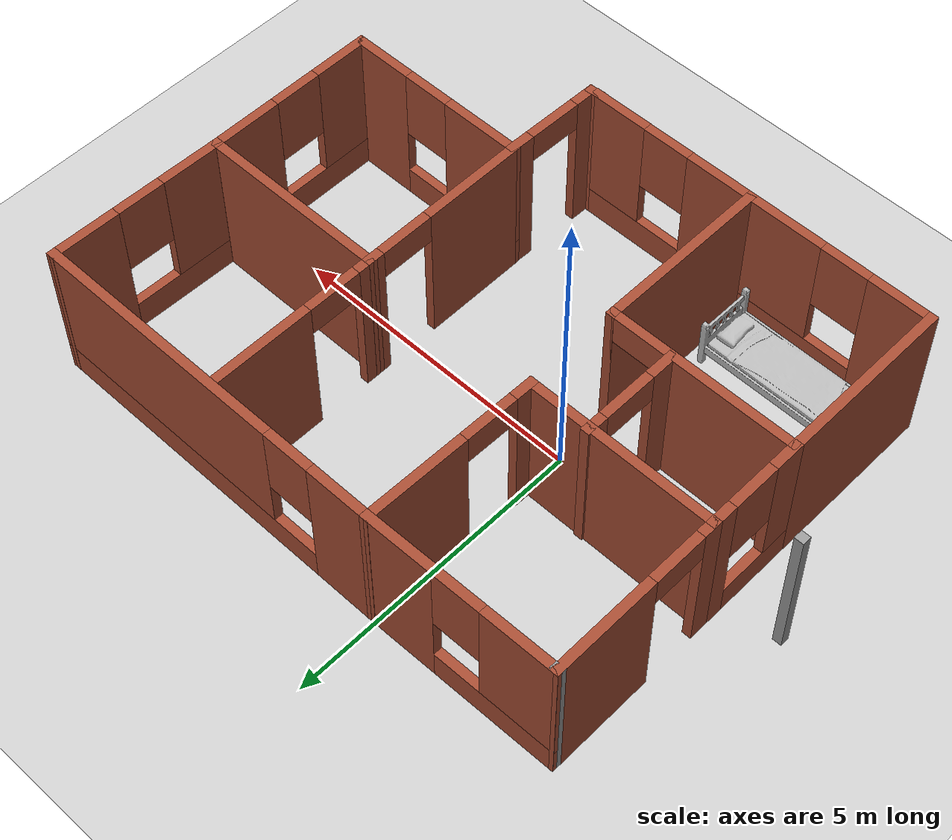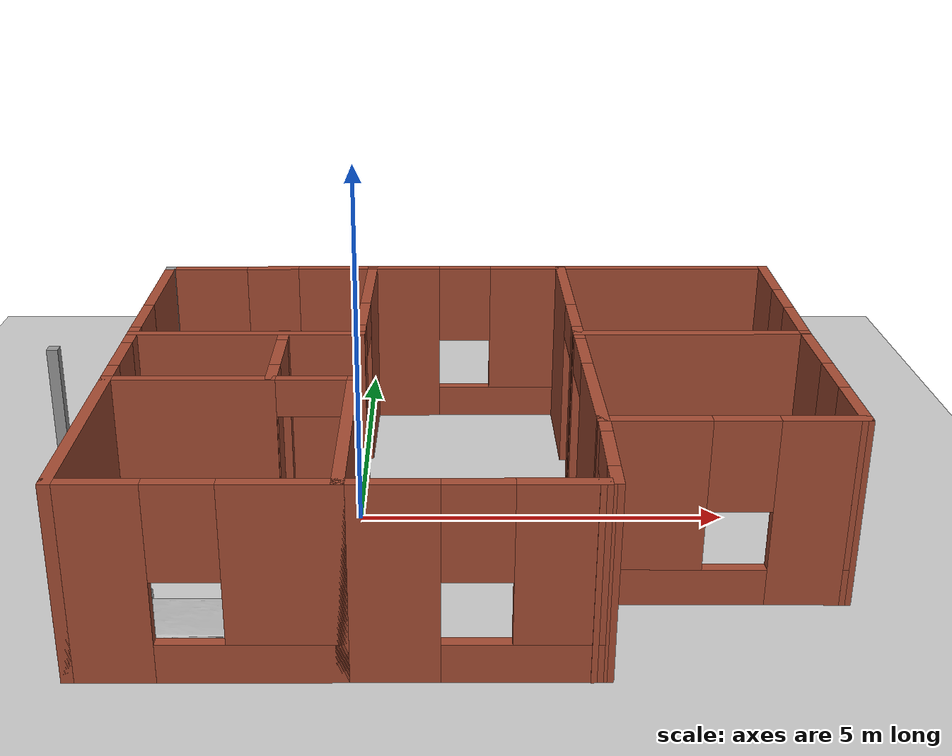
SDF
<sdf version="1.7">
 <world name="default">
  <model name="ground_plane">
   <static>1</static>
   <link name="link">
    <collision name="collision">
     <geometry><plane><normal>0 0 1</normal><size>100 100</size></plane></geometry>
     <surface><friction><ode><mu>100</mu><mu2>50</mu2></ode></friction></surface>
    </collision>
    <visual name="visual">
     <cast_shadows>0</cast_shadows>
     <geometry><plane><normal>0 0 1</normal><size>100 100</size></plane></geometry>
     <material>
      <script><uri>file://media/materials/scripts/gazebo.material</uri><name>Gazebo/Grey</name></script>
     </material>
    </visual>
   </link>
  </model>
  <model name="4house">
   <pose>1.06464 0.189206 0 0 -0 0</pose>
   <link name="Wall_1">
    <collision name="Wall_1_Collision">
     <geometry><box><size>0.15 0.15 2.5</size></box></geometry>
     <pose>0 0 1.25 0 -0 0</pose>
    </collision>
    <visual name="Wall_1_Visual">
     <pose>0 0 1.25 0 -0 0</pose>
     <geometry><box><size>0.15 0.15 2.5</size></box></geometry>
     <material>
      <script><uri>file://media/materials/scripts/gazebo.material</uri><name>Gazebo/Grey</name></script>
      <ambient>0 0 0 1</ambient>
     </material>
     <meta><layer>0</layer></meta>
    </visual>
    <pose>-5.09441 -0.104259 0 0 -0 0</pose>
   </link>
   <link name="Wall_10">
    <pose>5.05914 1.93214 0 0 -0 -1.59399</pose>
    <visual name="Wall_10_Visual_0">
     <pose>-0.948146 0 1.25 0 -0 0</pose>
     <geometry><box><size>1.14728 0.15 2.5</size></box></geometry>
     <material>
      <script><uri>file://media/materials/scripts/gazebo.material</uri><name>Gazebo/Bricks</name></script>
      <ambient>0.760784 0.662745 0.627451 1</ambient>
     </material>
     <meta><layer>0</layer></meta>
    </visual>
    <collision name="Wall_10_Collision_0">
     <geometry><box><size>1.14728 0.15 2.5</size></box></geometry>
     <pose>-0.948146 0 1.25 0 -0 0</pose>
    </collision>
    <visual name="Wall_10_Visual_1">
     <pose>0.573639 0 0.25 0 -0 0</pose>
     <geometry><box><size>1.89629 0.15 0.5</size></box></geometry>
     <material>
      <script><uri>file://media/materials/scripts/gazebo.material</uri><name>Gazebo/Bricks</name></script>
      <ambient>0.760784 0.662745 0.627451 1</ambient>
     </material>
     <meta><layer>0</layer></meta>
    </visual>
    <collision name="Wall_10_Collision_1">
     <geometry><box><size>1.89629 0.15 0.5</size></box></geometry>
     <pose>0.573639 0 0.25 0 -0 0</pose>
    </collision>
    <visual name="Wall_10_Visual_2">
     <pose>0.973639 0 1.5 0 -0 0</pose>
     <geometry><box><size>1.09629 0.15 2</size></box></geometry>
     <material>
      <script><uri>file://media/materials/scripts/gazebo.material</uri><name>Gazebo/Bricks</name></script>
      <ambient>0.760784 0.662745 0.627451 1</ambient>
     </material>
     <meta><layer>0</layer></meta>
    </visual>
    <collision name="Wall_10_Collision_2">
     <geometry><box><size>1.09629 0.15 2</size></box></geometry>
     <pose>0.973639 0 1.5 0 -0 0</pose>
    </collision>
    <visual name="Wall_10_Visual_3">
     <pose>0.025494 0 1.9 0 -0 0</pose>
     <geometry><box><size>0.8 0.15 1.2</size></box></geometry>
     <material>
      <script><uri>file://media/materials/scripts/gazebo.material</uri><name>Gazebo/Bricks</name></script>
      <ambient>0.760784 0.662745 0.627451 1</ambient>
     </material>
     <meta><layer>0</layer></meta>
    </visual>
    <collision name="Wall_10_Collision_3">
     <geometry><box><size>0.8 0.15 1.2</size></box></geometry>
     <pose>0.025494 0 1.9 0 -0 0</pose>
    </collision>
   </link>
   <link name="Wall_11">
    <collision name="Wall_11_Collision">
     <geometry><box><size>3.25 0.15 2.5</size></box></geometry>
     <pose>0 0 1.25 0 -0 0</pose>
    </collision>
    <visual name="Wall_11_Visual">
     <pose>0 0 1.25 0 -0 0</pose>
     <geometry><box><size>3.25 0.15 2.5</size></box></geometry>
     <material>
      <script><uri>file://media/materials/scripts/gazebo.material</uri><name>Gazebo/Bricks</name></script>
      <ambient>0.760784 0.662745 0.627451 1</ambient>
     </material>
     <meta><layer>0</layer></meta>
    </visual>
    <pose>3.47559 0.485741 0 0 -0 3.14159</pose>
   </link>
   <link name="Wall_12">
    <pose>1.92559 1.91074 0 0 -0 1.5708</pose>
    <visual name="Wall_12_Visual_0">
     <pose>-1.33451 0 1.25 0 -0 0</pose>
     <geometry><box><size>0.330972 0.15 2.5</size></box></geometry>
     <material>
      <script><uri>file://media/materials/scripts/gazebo.material</uri><name>Gazebo/Bricks</name></script>
      <ambient>0.760784 0.662745 0.627451 1</ambient>
     </material>
     <meta><layer>0</layer></meta>
    </visual>
    <collision name="Wall_12_Collision_0">
     <geometry><box><size>0.330972 0.15 2.5</size></box></geometry>
     <pose>-1.33451 0 1.25 0 -0 0</pose>
    </collision>
    <visual name="Wall_12_Visual_1">
     <pose>0.615486 0 1.25 0 -0 0</pose>
     <geometry><box><size>1.76903 0.15 2.5</size></box></geometry>
     <material>
      <script><uri>file://media/materials/scripts/gazebo.material</uri><name>Gazebo/Bricks</name></script>
      <ambient>0.760784 0.662745 0.627451 1</ambient>
     </material>
     <meta><layer>0</layer></meta>
    </visual>
    <collision name="Wall_12_Collision_1">
     <geometry><box><size>1.76903 0.15 2.5</size></box></geometry>
     <pose>0.615486 0 1.25 0 -0 0</pose>
    </collision>
    <visual name="Wall_12_Visual_2">
     <pose>-0.719028 0 2.25 0 -0 0</pose>
     <geometry><box><size>0.9 0.15 0.5</size></box></geometry>
     <material>
      <script><uri>file://media/materials/scripts/gazebo.material</uri><name>Gazebo/Bricks</name></script>
      <ambient>0.760784 0.662745 0.627451 1</ambient>
     </material>
     <meta><layer>0</layer></meta>
    </visual>
    <collision name="Wall_12_Collision_2">
     <geometry><box><size>0.9 0.15 0.5</size></box></geometry>
     <pose>-0.719028 0 2.25 0 -0 0</pose>
    </collision>
   </link>
   <link name="Wall_14">
    <pose>5.02559 -0.939259 0 0 -0 -1.5708</pose>
    <visual name="Wall_14_Visual_0">
     <pose>-0.905217 0 1.25 0 -0 0</pose>
     <geometry><box><size>1.18957 0.15 2.5</size></box></geometry>
     <material>
      <script><uri>file://media/materials/scripts/gazebo.material</uri><name>Gazebo/Bricks</name></script>
      <ambient>0.760784 0.662745 0.627451 1</ambient>
     </material>
     <meta><layer>0</layer></meta>
    </visual>
    <collision name="Wall_14_Collision_0">
     <geometry><box><size>1.18957 0.15 2.5</size></box></geometry>
     <pose>-0.905217 0 1.25 0 -0 0</pose>
    </collision>
    <visual name="Wall_14_Visual_1">
     <pose>0.594783 0 0.25 0 -0 0</pose>
     <geometry><box><size>1.81043 0.15 0.5</size></box></geometry>
     <material>
      <script><uri>file://media/materials/scripts/gazebo.material</uri><name>Gazebo/Bricks</name></script>
      <ambient>0.760784 0.662745 0.627451 1</ambient>
     </material>
     <meta><layer>0</layer></meta>
    </visual>
    <collision name="Wall_14_Collision_1">
     <geometry><box><size>1.81043 0.15 0.5</size></box></geometry>
     <pose>0.594783 0 0.25 0 -0 0</pose>
    </collision>
    <visual name="Wall_14_Visual_2">
     <pose>0.994783 0 1.5 0 -0 0</pose>
     <geometry><box><size>1.01043 0.15 2</size></box></geometry>
     <material>
      <script><uri>file://media/materials/scripts/gazebo.material</uri><name>Gazebo/Bricks</name></script>
      <ambient>0.760784 0.662745 0.627451 1</ambient>
     </material>
     <meta><layer>0</layer></meta>
    </visual>
    <collision name="Wall_14_Collision_2">
     <geometry><box><size>1.01043 0.15 2</size></box></geometry>
     <pose>0.994783 0 1.5 0 -0 0</pose>
    </collision>
    <visual name="Wall_14_Visual_3">
     <pose>0.089566 0 1.9 0 -0 0</pose>
     <geometry><box><size>0.8 0.15 1.2</size></box></geometry>
     <material>
      <script><uri>file://media/materials/scripts/gazebo.material</uri><name>Gazebo/Bricks</name></script>
      <ambient>0.760784 0.662745 0.627451 1</ambient>
     </material>
     <meta><layer>0</layer></meta>
    </visual>
    <collision name="Wall_14_Collision_3">
     <geometry><box><size>0.8 0.15 1.2</size></box></geometry>
     <pose>0.089566 0 1.9 0 -0 0</pose>
    </collision>
   </link>
   <link name="Wall_15">
    <pose>3.48059 -2.35926 0 0 -0 3.13836</pose>
    <visual name="Wall_15_Visual_0">
     <pose>-1.08159 0 1.25 0 -0 0</pose>
     <geometry><box><size>1.07683 0.15 2.5</size></box></geometry>
     <material>
      <script><uri>file://media/materials/scripts/gazebo.material</uri><name>Gazebo/Bricks</name></script>
      <ambient>0.760784 0.662745 0.627451 1</ambient>
     </material>
     <meta><layer>0</layer></meta>
    </visual>
    <collision name="Wall_15_Collision_0">
     <geometry><box><size>1.07683 0.15 2.5</size></box></geometry>
     <pose>-1.08159 0 1.25 0 -0 0</pose>
    </collision>
    <visual name="Wall_15_Visual_1">
     <pose>0.538417 0 0.25 0 -0 0</pose>
     <geometry><box><size>2.16318 0.15 0.5</size></box></geometry>
     <material>
      <script><uri>file://media/materials/scripts/gazebo.material</uri><name>Gazebo/Bricks</name></script>
      <ambient>0.760784 0.662745 0.627451 1</ambient>
     </material>
     <meta><layer>0</layer></meta>
    </visual>
    <collision name="Wall_15_Collision_1">
     <geometry><box><size>2.16318 0.15 0.5</size></box></geometry>
     <pose>0.538417 0 0.25 0 -0 0</pose>
    </collision>
    <visual name="Wall_15_Visual_2">
     <pose>0.938417 0 1.5 0 -0 0</pose>
     <geometry><box><size>1.36318 0.15 2</size></box></geometry>
     <material>
      <script><uri>file://media/materials/scripts/gazebo.material</uri><name>Gazebo/Bricks</name></script>
      <ambient>0.760784 0.662745 0.627451 1</ambient>
     </material>
     <meta><layer>0</layer></meta>
    </visual>
    <collision name="Wall_15_Collision_2">
     <geometry><box><size>1.36318 0.15 2</size></box></geometry>
     <pose>0.938417 0 1.5 0 -0 0</pose>
    </collision>
    <visual name="Wall_15_Visual_3">
     <pose>-0.143175 0 1.9 0 -0 0</pose>
     <geometry><box><size>0.8 0.15 1.2</size></box></geometry>
     <material>
      <script><uri>file://media/materials/scripts/gazebo.material</uri><name>Gazebo/Bricks</name></script>
      <ambient>0.760784 0.662745 0.627451 1</ambient>
     </material>
     <meta><layer>0</layer></meta>
    </visual>
    <collision name="Wall_15_Collision_3">
     <geometry><box><size>0.8 0.15 1.2</size></box></geometry>
     <pose>-0.143175 0 1.9 0 -0 0</pose>
    </collision>
   </link>
   <link name="Wall_16">
    <pose>1.93059 -0.934259 0 0 -0 1.57432</pose>
    <visual name="Wall_16_Visual_0">
     <pose>-0.59199 0 1.25 0 -0 0</pose>
     <geometry><box><size>1.8063 0.15 2.5</size></box></geometry>
     <material>
      <script><uri>file://media/materials/scripts/gazebo.material</uri><name>Gazebo/Bricks</name></script>
      <ambient>0.760784 0.662745 0.627451 1</ambient>
     </material>
     <meta><layer>0</layer></meta>
    </visual>
    <collision name="Wall_16_Collision_0">
     <geometry><box><size>1.8063 0.15 2.5</size></box></geometry>
     <pose>-0.59199 0 1.25 0 -0 0</pose>
    </collision>
    <visual name="Wall_16_Visual_1">
     <pose>1.35315 0 1.25 0 -0 0</pose>
     <geometry><box><size>0.283979 0.15 2.5</size></box></geometry>
     <material>
      <script><uri>file://media/materials/scripts/gazebo.material</uri><name>Gazebo/Bricks</name></script>
      <ambient>0.760784 0.662745 0.627451 1</ambient>
     </material>
     <meta><layer>0</layer></meta>
    </visual>
    <collision name="Wall_16_Collision_1">
     <geometry><box><size>0.283979 0.15 2.5</size></box></geometry>
     <pose>1.35315 0 1.25 0 -0 0</pose>
    </collision>
    <visual name="Wall_16_Visual_2">
     <pose>0.761162 0 2.25 0 -0 0</pose>
     <geometry><box><size>0.9 0.15 0.5</size></box></geometry>
     <material>
      <script><uri>file://media/materials/scripts/gazebo.material</uri><name>Gazebo/Bricks</name></script>
      <ambient>0.760784 0.662745 0.627451 1</ambient>
     </material>
     <meta><layer>0</layer></meta>
    </visual>
    <collision name="Wall_16_Collision_2">
     <geometry><box><size>0.9 0.15 0.5</size></box></geometry>
     <pose>0.761162 0 2.25 0 -0 0</pose>
    </collision>
   </link>
   <link name="Wall_18">
    <pose>-4.16441 -0.324259 0 0 -0 -1.5708</pose>
    <visual name="Wall_18_Visual_0">
     <pose>-0.655307 0 1.25 0 -0 0</pose>
     <geometry><box><size>0.439386 0.15 2.5</size></box></geometry>
     <material>
      <script><uri>file://media/materials/scripts/gazebo.material</uri><name>Gazebo/Bricks</name></script>
      <ambient>0.760784 0.662745 0.627451 1</ambient>
     </material>
     <meta><layer>0</layer></meta>
    </visual>
    <collision name="Wall_18_Collision_0">
     <geometry><box><size>0.439386 0.15 2.5</size></box></geometry>
     <pose>-0.655307 0 1.25 0 -0 0</pose>
    </collision>
    <visual name="Wall_18_Visual_1">
     <pose>0.219693 0 0.25 0 -0 0</pose>
     <geometry><box><size>1.31061 0.15 0.5</size></box></geometry>
     <material>
      <script><uri>file://media/materials/scripts/gazebo.material</uri><name>Gazebo/Bricks</name></script>
      <ambient>0.760784 0.662745 0.627451 1</ambient>
     </material>
     <meta><layer>0</layer></meta>
    </visual>
    <collision name="Wall_18_Collision_1">
     <geometry><box><size>1.31061 0.15 0.5</size></box></geometry>
     <pose>0.219693 0 0.25 0 -0 0</pose>
    </collision>
    <visual name="Wall_18_Visual_2">
     <pose>0.619693 0 1.5 0 -0 0</pose>
     <geometry><box><size>0.510614 0.15 2</size></box></geometry>
     <material>
      <script><uri>file://media/materials/scripts/gazebo.material</uri><name>Gazebo/Bricks</name></script>
      <ambient>0.760784 0.662745 0.627451 1</ambient>
     </material>
     <meta><layer>0</layer></meta>
    </visual>
    <collision name="Wall_18_Collision_2">
     <geometry><box><size>0.510614 0.15 2</size></box></geometry>
     <pose>0.619693 0 1.5 0 -0 0</pose>
    </collision>
    <visual name="Wall_18_Visual_3">
     <pose>-0.035614 0 1.9 0 -0 0</pose>
     <geometry><box><size>0.8 0.15 1.2</size></box></geometry>
     <material>
      <script><uri>file://media/materials/scripts/gazebo.material</uri><name>Gazebo/Bricks</name></script>
      <ambient>0.760784 0.662745 0.627451 1</ambient>
     </material>
     <meta><layer>0</layer></meta>
    </visual>
    <collision name="Wall_18_Collision_3">
     <geometry><box><size>0.8 0.15 1.2</size></box></geometry>
     <pose>-0.035614 0 1.9 0 -0 0</pose>
    </collision>
   </link>
   <link name="Wall_2">
    <pose>-4.16441 1.90074 0 0 -0 -1.5708</pose>
    <visual name="Wall_2_Visual_0">
     <pose>-0.608921 0 1.25 0 -0 0</pose>
     <geometry><box><size>1.78216 0.15 2.5</size></box></geometry>
     <material>
      <script><uri>file://media/materials/scripts/gazebo.material</uri><name>Gazebo/Bricks</name></script>
      <ambient>0.760784 0.662745 0.627451 1</ambient>
     </material>
     <meta><layer>0</layer></meta>
    </visual>
    <collision name="Wall_2_Collision_0">
     <geometry><box><size>1.78216 0.15 2.5</size></box></geometry>
     <pose>-0.608921 0 1.25 0 -0 0</pose>
    </collision>
    <visual name="Wall_2_Visual_1">
     <pose>1.34108 0 1.25 0 -0 0</pose>
     <geometry><box><size>0.317842 0.15 2.5</size></box></geometry>
     <material>
      <script><uri>file://media/materials/scripts/gazebo.material</uri><name>Gazebo/Bricks</name></script>
      <ambient>0.760784 0.662745 0.627451 1</ambient>
     </material>
     <meta><layer>0</layer></meta>
    </visual>
    <collision name="Wall_2_Collision_1">
     <geometry><box><size>0.317842 0.15 2.5</size></box></geometry>
     <pose>1.34108 0 1.25 0 -0 0</pose>
    </collision>
    <visual name="Wall_2_Visual_2">
     <pose>0.732158 0 2.25 0 -0 0</pose>
     <geometry><box><size>0.9 0.15 0.5</size></box></geometry>
     <material>
      <script><uri>file://media/materials/scripts/gazebo.material</uri><name>Gazebo/Bricks</name></script>
      <ambient>0.760784 0.662745 0.627451 1</ambient>
     </material>
     <meta><layer>0</layer></meta>
    </visual>
    <collision name="Wall_2_Collision_2">
     <geometry><box><size>0.9 0.15 0.5</size></box></geometry>
     <pose>0.732158 0 2.25 0 -0 0</pose>
    </collision>
   </link>
   <link name="Wall_21">
    <pose>-2.61441 -1.12426 0 0 -0 0</pose>
    <visual name="Wall_21_Visual_0">
     <pose>-0.5225 0 1.25 0 -0 0</pose>
     <geometry><box><size>2.205 0.15 2.5</size></box></geometry>
     <material>
      <script><uri>file://media/materials/scripts/gazebo.material</uri><name>Gazebo/Bricks</name></script>
      <ambient>0.760784 0.662745 0.627451 1</ambient>
     </material>
     <meta><layer>0</layer></meta>
    </visual>
    <collision name="Wall_21_Collision_0">
     <geometry><box><size>2.205 0.15 2.5</size></box></geometry>
     <pose>-0.5225 0 1.25 0 -0 0</pose>
    </collision>
    <visual name="Wall_21_Visual_1">
     <pose>1.5525 0 1.25 0 -0 0</pose>
     <geometry><box><size>0.145 0.15 2.5</size></box></geometry>
     <material>
      <script><uri>file://media/materials/scripts/gazebo.material</uri><name>Gazebo/Bricks</name></script>
      <ambient>0.760784 0.662745 0.627451 1</ambient>
     </material>
     <meta><layer>0</layer></meta>
    </visual>
    <collision name="Wall_21_Collision_1">
     <geometry><box><size>0.145 0.15 2.5</size></box></geometry>
     <pose>1.5525 0 1.25 0 -0 0</pose>
    </collision>
    <visual name="Wall_21_Visual_2">
     <pose>1.03 0 2.25 0 -0 0</pose>
     <geometry><box><size>0.9 0.15 0.5</size></box></geometry>
     <material>
      <script><uri>file://media/materials/scripts/gazebo.material</uri><name>Gazebo/Bricks</name></script>
      <ambient>0.760784 0.662745 0.627451 1</ambient>
     </material>
     <meta><layer>0</layer></meta>
    </visual>
    <collision name="Wall_21_Collision_2">
     <geometry><box><size>0.9 0.15 0.5</size></box></geometry>
     <pose>1.03 0 2.25 0 -0 0</pose>
    </collision>
   </link>
   <link name="Wall_23">
    <pose>-2.09441 -0.294259 0 0 -0 1.5708</pose>
    <visual name="Wall_23_Visual_0">
     <pose>-0.6325 0 1.25 0 -0 0</pose>
     <geometry><box><size>0.485 0.15 2.5</size></box></geometry>
     <material>
      <script><uri>file://media/materials/scripts/gazebo.material</uri><name>Gazebo/Bricks</name></script>
      <ambient>0.760784 0.662745 0.627451 1</ambient>
     </material>
     <meta><layer>0</layer></meta>
    </visual>
    <collision name="Wall_23_Collision_0">
     <geometry><box><size>0.485 0.15 2.5</size></box></geometry>
     <pose>-0.6325 0 1.25 0 -0 0</pose>
    </collision>
    <visual name="Wall_23_Visual_1">
     <pose>0.6925 0 1.25 0 -0 0</pose>
     <geometry><box><size>0.365 0.15 2.5</size></box></geometry>
     <material>
      <script><uri>file://media/materials/scripts/gazebo.material</uri><name>Gazebo/Bricks</name></script>
      <ambient>0.760784 0.662745 0.627451 1</ambient>
     </material>
     <meta><layer>0</layer></meta>
    </visual>
    <collision name="Wall_23_Collision_1">
     <geometry><box><size>0.365 0.15 2.5</size></box></geometry>
     <pose>0.6925 0 1.25 0 -0 0</pose>
    </collision>
    <visual name="Wall_23_Visual_2">
     <pose>0.06 0 2.25 0 -0 0</pose>
     <geometry><box><size>0.9 0.15 0.5</size></box></geometry>
     <material>
      <script><uri>file://media/materials/scripts/gazebo.material</uri><name>Gazebo/Bricks</name></script>
      <ambient>0.760784 0.662745 0.627451 1</ambient>
     </material>
     <meta><layer>0</layer></meta>
    </visual>
    <collision name="Wall_23_Collision_2">
     <geometry><box><size>0.9 0.15 0.5</size></box></geometry>
     <pose>0.06 0 2.25 0 -0 0</pose>
    </collision>
   </link>
   <link name="Wall_25">
    <collision name="Wall_25_Collision">
     <geometry><box><size>3 0.15 2.5</size></box></geometry>
     <pose>0 0 1.25 0 -0 0</pose>
    </collision>
    <visual name="Wall_25_Visual">
     <pose>0 0 1.25 0 -0 0</pose>
     <geometry><box><size>3 0.15 2.5</size></box></geometry>
     <material>
      <script><uri>file://media/materials/scripts/gazebo.material</uri><name>Gazebo/Bricks</name></script>
      <ambient>0.760784 0.662745 0.627451 1</ambient>
     </material>
     <meta><layer>0</layer></meta>
    </visual>
    <pose>-4.16441 -2.54926 0 0 -0 -1.5708</pose>
   </link>
   <link name="Wall_26">
    <pose>-2.61441 -3.97426 0 0 -0 0</pose>
    <visual name="Wall_26_Visual_0">
     <pose>-1.08519 0 1.25 0 -0 0</pose>
     <geometry><box><size>1.07962 0.15 2.5</size></box></geometry>
     <material>
      <script><uri>file://media/materials/scripts/gazebo.material</uri><name>Gazebo/Bricks</name></script>
      <ambient>0.760784 0.662745 0.627451 1</ambient>
     </material>
     <meta><layer>0</layer></meta>
    </visual>
    <collision name="Wall_26_Collision_0">
     <geometry><box><size>1.07962 0.15 2.5</size></box></geometry>
     <pose>-1.08519 0 1.25 0 -0 0</pose>
    </collision>
    <visual name="Wall_26_Visual_1">
     <pose>0.539808 0 0.25 0 -0 0</pose>
     <geometry><box><size>2.17038 0.15 0.5</size></box></geometry>
     <material>
      <script><uri>file://media/materials/scripts/gazebo.material</uri><name>Gazebo/Bricks</name></script>
      <ambient>0.760784 0.662745 0.627451 1</ambient>
     </material>
     <meta><layer>0</layer></meta>
    </visual>
    <collision name="Wall_26_Collision_1">
     <geometry><box><size>2.17038 0.15 0.5</size></box></geometry>
     <pose>0.539808 0 0.25 0 -0 0</pose>
    </collision>
    <visual name="Wall_26_Visual_2">
     <pose>0.939808 0 1.5 0 -0 0</pose>
     <geometry><box><size>1.37038 0.15 2</size></box></geometry>
     <material>
      <script><uri>file://media/materials/scripts/gazebo.material</uri><name>Gazebo/Bricks</name></script>
      <ambient>0.760784 0.662745 0.627451 1</ambient>
     </material>
     <meta><layer>0</layer></meta>
    </visual>
    <collision name="Wall_26_Collision_2">
     <geometry><box><size>1.37038 0.15 2</size></box></geometry>
     <pose>0.939808 0 1.5 0 -0 0</pose>
    </collision>
    <visual name="Wall_26_Visual_3">
     <pose>-0.145384 0 1.9 0 -0 0</pose>
     <geometry><box><size>0.8 0.15 1.2</size></box></geometry>
     <material>
      <script><uri>file://media/materials/scripts/gazebo.material</uri><name>Gazebo/Bricks</name></script>
      <ambient>0.760784 0.662745 0.627451 1</ambient>
     </material>
     <meta><layer>0</layer></meta>
    </visual>
    <collision name="Wall_26_Collision_3">
     <geometry><box><size>0.8 0.15 1.2</size></box></geometry>
     <pose>-0.145384 0 1.9 0 -0 0</pose>
    </collision>
   </link>
   <link name="Wall_27">
    <collision name="Wall_27_Collision">
     <geometry><box><size>3 0.15 2.5</size></box></geometry>
     <pose>0 0 1.25 0 -0 0</pose>
    </collision>
    <visual name="Wall_27_Visual">
     <pose>0 0 1.25 0 -0 0</pose>
     <geometry><box><size>3 0.15 2.5</size></box></geometry>
     <material>
      <script><uri>file://media/materials/scripts/gazebo.material</uri><name>Gazebo/Bricks</name></script>
      <ambient>0.760784 0.662745 0.627451 1</ambient>
     </material>
     <meta><layer>0</layer></meta>
    </visual>
    <pose>-1.06441 -2.54926 0 0 -0 1.5708</pose>
   </link>
   <link name="Wall_29">
    <pose>0.360593 -3.97426 0 0 -0 0</pose>
    <visual name="Wall_29_Visual_0">
     <pose>-0.91418 0 1.25 0 -0 0</pose>
     <geometry><box><size>1.17164 0.15 2.5</size></box></geometry>
     <material>
      <script><uri>file://media/materials/scripts/gazebo.material</uri><name>Gazebo/Bricks</name></script>
      <ambient>0.760784 0.662745 0.627451 1</ambient>
     </material>
     <meta><layer>0</layer></meta>
    </visual>
    <collision name="Wall_29_Collision_0">
     <geometry><box><size>1.17164 0.15 2.5</size></box></geometry>
     <pose>-0.91418 0 1.25 0 -0 0</pose>
    </collision>
    <visual name="Wall_29_Visual_1">
     <pose>0.58582 0 0.25 0 -0 0</pose>
     <geometry><box><size>1.82836 0.15 0.5</size></box></geometry>
     <material>
      <script><uri>file://media/materials/scripts/gazebo.material</uri><name>Gazebo/Bricks</name></script>
      <ambient>0.760784 0.662745 0.627451 1</ambient>
     </material>
     <meta><layer>0</layer></meta>
    </visual>
    <collision name="Wall_29_Collision_1">
     <geometry><box><size>1.82836 0.15 0.5</size></box></geometry>
     <pose>0.58582 0 0.25 0 -0 0</pose>
    </collision>
    <visual name="Wall_29_Visual_2">
     <pose>0.98582 0 1.5 0 -0 0</pose>
     <geometry><box><size>1.02836 0.15 2</size></box></geometry>
     <material>
      <script><uri>file://media/materials/scripts/gazebo.material</uri><name>Gazebo/Bricks</name></script>
      <ambient>0.760784 0.662745 0.627451 1</ambient>
     </material>
     <meta><layer>0</layer></meta>
    </visual>
    <collision name="Wall_29_Collision_2">
     <geometry><box><size>1.02836 0.15 2</size></box></geometry>
     <pose>0.98582 0 1.5 0 -0 0</pose>
    </collision>
    <visual name="Wall_29_Visual_3">
     <pose>0.07164 0 1.9 0 -0 0</pose>
     <geometry><box><size>0.8 0.15 1.2</size></box></geometry>
     <material>
      <script><uri>file://media/materials/scripts/gazebo.material</uri><name>Gazebo/Bricks</name></script>
      <ambient>0.760784 0.662745 0.627451 1</ambient>
     </material>
     <meta><layer>0</layer></meta>
    </visual>
    <collision name="Wall_29_Collision_3">
     <geometry><box><size>0.8 0.15 1.2</size></box></geometry>
     <pose>0.07164 0 1.9 0 -0 0</pose>
    </collision>
   </link>
   <link name="Wall_3">
    <collision name="Wall_3_Collision">
     <geometry><box><size>3.25 0.15 2.5</size></box></geometry>
     <pose>0 0 1.25 0 -0 0</pose>
    </collision>
    <visual name="Wall_3_Visual">
     <pose>0 0 1.25 0 -0 0</pose>
     <geometry><box><size>3.25 0.15 2.5</size></box></geometry>
     <material>
      <script><uri>file://media/materials/scripts/gazebo.material</uri><name>Gazebo/Bricks</name></script>
      <ambient>0.760784 0.662745 0.627451 1</ambient>
     </material>
     <meta><layer>0</layer></meta>
    </visual>
    <pose>-2.61441 0.475741 0 0 -0 0</pose>
   </link>
   <link name="Wall_30">
    <collision name="Wall_30_Collision">
     <geometry><box><size>0.260454 0.15 2.5</size></box></geometry>
     <pose>0 0 1.25 0 -0 0</pose>
    </collision>
    <visual name="Wall_30_Visual">
     <pose>0 0 1.25 0 -0 0</pose>
     <geometry><box><size>0.260454 0.15 2.5</size></box></geometry>
     <material>
      <script><uri>file://media/materials/scripts/gazebo.material</uri><name>Gazebo/Bricks</name></script>
      <ambient>1 1 1 1</ambient>
     </material>
     <meta><layer>0</layer></meta>
    </visual>
    <pose>1.84059 -3.96926 0 0 -0 0.09066</pose>
   </link>
   <link name="Wall_31">
    <pose>1.92559 -3.15926 0 0 -0 1.54596</pose>
    <visual name="Wall_31_Visual_0">
     <pose>-0.662641 0 1.25 0 -0 0</pose>
     <geometry><box><size>0.435215 0.15 2.5</size></box></geometry>
     <material>
      <script><uri>file://media/materials/scripts/gazebo.material</uri><name>Gazebo/Bricks</name></script>
      <ambient>0.760784 0.662745 0.627451 1</ambient>
     </material>
     <meta><layer>0</layer></meta>
    </visual>
    <collision name="Wall_31_Collision_0">
     <geometry><box><size>0.435215 0.15 2.5</size></box></geometry>
     <pose>-0.662641 0 1.25 0 -0 0</pose>
    </collision>
    <visual name="Wall_31_Visual_1">
     <pose>0.667608 0 1.25 0 -0 0</pose>
     <geometry><box><size>0.425282 0.15 2.5</size></box></geometry>
     <material>
      <script><uri>file://media/materials/scripts/gazebo.material</uri><name>Gazebo/Bricks</name></script>
      <ambient>0.760784 0.662745 0.627451 1</ambient>
     </material>
     <meta><layer>0</layer></meta>
    </visual>
    <collision name="Wall_31_Collision_1">
     <geometry><box><size>0.425282 0.15 2.5</size></box></geometry>
     <pose>0.667608 0 1.25 0 -0 0</pose>
    </collision>
    <visual name="Wall_31_Visual_2">
     <pose>0.004967 0 2.25 0 -0 0</pose>
     <geometry><box><size>0.9 0.15 0.5</size></box></geometry>
     <material>
      <script><uri>file://media/materials/scripts/gazebo.material</uri><name>Gazebo/Bricks</name></script>
      <ambient>0.760784 0.662745 0.627451 1</ambient>
     </material>
     <meta><layer>0</layer></meta>
    </visual>
    <collision name="Wall_31_Collision_2">
     <geometry><box><size>0.9 0.15 0.5</size></box></geometry>
     <pose>0.004967 0 2.25 0 -0 0</pose>
    </collision>
   </link>
   <link name="Wall_4">
    <pose>-1.03586 1.92714 0 0 -0 1.55113</pose>
    <visual name="Wall_4_Visual_0">
     <pose>-1.32781 0 1.25 0 -0 0</pose>
     <geometry><box><size>0.397735 0.15 2.5</size></box></geometry>
     <material>
      <script><uri>file://media/materials/scripts/gazebo.material</uri><name>Gazebo/Bricks</name></script>
      <ambient>0.760784 0.662745 0.627451 1</ambient>
     </material>
     <meta><layer>0</layer></meta>
    </visual>
    <collision name="Wall_4_Collision_0">
     <geometry><box><size>0.397735 0.15 2.5</size></box></geometry>
     <pose>-1.32781 0 1.25 0 -0 0</pose>
    </collision>
    <visual name="Wall_4_Visual_1">
     <pose>0.648868 0 1.25 0 -0 0</pose>
     <geometry><box><size>1.75562 0.15 2.5</size></box></geometry>
     <material>
      <script><uri>file://media/materials/scripts/gazebo.material</uri><name>Gazebo/Bricks</name></script>
      <ambient>0.760784 0.662745 0.627451 1</ambient>
     </material>
     <meta><layer>0</layer></meta>
    </visual>
    <collision name="Wall_4_Collision_1">
     <geometry><box><size>1.75562 0.15 2.5</size></box></geometry>
     <pose>0.648868 0 1.25 0 -0 0</pose>
    </collision>
    <visual name="Wall_4_Visual_2">
     <pose>-0.678942 0 2.25 0 -0 0</pose>
     <geometry><box><size>0.9 0.15 0.5</size></box></geometry>
     <material>
      <script><uri>file://media/materials/scripts/gazebo.material</uri><name>Gazebo/Bricks</name></script>
      <ambient>0.760784 0.662745 0.627451 1</ambient>
     </material>
     <meta><layer>0</layer></meta>
    </visual>
    <collision name="Wall_4_Collision_2">
     <geometry><box><size>0.9 0.15 0.5</size></box></geometry>
     <pose>-0.678942 0 2.25 0 -0 0</pose>
    </collision>
   </link>
   <link name="Wall_5">
    <pose>-2.58586 3.35214 0 0 -0 -3.12487</pose>
    <visual name="Wall_5_Visual_0">
     <pose>-1.0379 0 1.25 0 -0 0</pose>
     <geometry><box><size>1.23157 0.15 2.5</size></box></geometry>
     <material>
      <script><uri>file://media/materials/scripts/gazebo.material</uri><name>Gazebo/Bricks</name></script>
      <ambient>0.760784 0.662745 0.627451 1</ambient>
     </material>
     <meta><layer>0</layer></meta>
    </visual>
    <collision name="Wall_5_Collision_0">
     <geometry><box><size>1.23157 0.15 2.5</size></box></geometry>
     <pose>-1.0379 0 1.25 0 -0 0</pose>
    </collision>
    <visual name="Wall_5_Visual_1">
     <pose>0.615787 0 0.25 0 -0 0</pose>
     <geometry><box><size>2.07581 0.15 0.5</size></box></geometry>
     <material>
      <script><uri>file://media/materials/scripts/gazebo.material</uri><name>Gazebo/Bricks</name></script>
      <ambient>0.760784 0.662745 0.627451 1</ambient>
     </material>
     <meta><layer>0</layer></meta>
    </visual>
    <collision name="Wall_5_Collision_1">
     <geometry><box><size>2.07581 0.15 0.5</size></box></geometry>
     <pose>0.615787 0 0.25 0 -0 0</pose>
    </collision>
    <visual name="Wall_5_Visual_2">
     <pose>1.01579 0 1.5 0 -0 0</pose>
     <geometry><box><size>1.27581 0.15 2</size></box></geometry>
     <material>
      <script><uri>file://media/materials/scripts/gazebo.material</uri><name>Gazebo/Bricks</name></script>
      <ambient>0.760784 0.662745 0.627451 1</ambient>
     </material>
     <meta><layer>0</layer></meta>
    </visual>
    <collision name="Wall_5_Collision_2">
     <geometry><box><size>1.27581 0.15 2</size></box></geometry>
     <pose>1.01579 0 1.5 0 -0 0</pose>
    </collision>
    <visual name="Wall_5_Visual_3">
     <pose>-0.022117 0 1.9 0 -0 0</pose>
     <geometry><box><size>0.8 0.15 1.2</size></box></geometry>
     <material>
      <script><uri>file://media/materials/scripts/gazebo.material</uri><name>Gazebo/Bricks</name></script>
      <ambient>0.760784 0.662745 0.627451 1</ambient>
     </material>
     <meta><layer>0</layer></meta>
    </visual>
    <collision name="Wall_5_Collision_3">
     <geometry><box><size>0.8 0.15 1.2</size></box></geometry>
     <pose>-0.022117 0 1.9 0 -0 0</pose>
    </collision>
   </link>
   <link name="Wall_6">
    <collision name="Wall_6_Collision">
     <geometry><box><size>0.16 0.15 2.5</size></box></geometry>
     <pose>0 0 1.25 0 -0 0</pose>
    </collision>
    <visual name="Wall_6_Visual">
     <pose>0 0 1.25 0 -0 0</pose>
     <geometry><box><size>0.16 0.15 2.5</size></box></geometry>
     <material>
      <script><uri>file://media/materials/scripts/gazebo.material</uri><name>Gazebo/Grey</name></script>
      <ambient>0 0 0 1</ambient>
     </material>
     <meta><layer>0</layer></meta>
    </visual>
    <pose>-4.15941 3.32574 0 0 -0 0</pose>
   </link>
   <link name="Wall_8">
    <pose>2.04269 3.37827 0 0 -0 0</pose>
    <visual name="Wall_8_Visual_0">
     <pose>-2.56888 0 1.25 0 -0 0</pose>
     <geometry><box><size>1.11225 0.15 2.5</size></box></geometry>
     <material>
      <script><uri>file://media/materials/scripts/gazebo.material</uri><name>Gazebo/Bricks</name></script>
      <ambient>0.760784 0.662745 0.627451 1</ambient>
     </material>
     <meta><layer>0</layer></meta>
    </visual>
    <collision name="Wall_8_Collision_0">
     <geometry><box><size>1.11225 0.15 2.5</size></box></geometry>
     <pose>-2.56888 0 1.25 0 -0 0</pose>
    </collision>
    <visual name="Wall_8_Visual_1">
     <pose>0.556124 0 0.25 0 -0 0</pose>
     <geometry><box><size>5.13775 0.15 0.5</size></box></geometry>
     <material>
      <script><uri>file://media/materials/scripts/gazebo.material</uri><name>Gazebo/Bricks</name></script>
      <ambient>0.760784 0.662745 0.627451 1</ambient>
     </material>
     <meta><layer>0</layer></meta>
    </visual>
    <collision name="Wall_8_Collision_1">
     <geometry><box><size>5.13775 0.15 0.5</size></box></geometry>
     <pose>0.556124 0 0.25 0 -0 0</pose>
    </collision>
    <visual name="Wall_8_Visual_2">
     <pose>0.956124 0 1.5 0 -0 0</pose>
     <geometry><box><size>4.33775 0.15 2</size></box></geometry>
     <material>
      <script><uri>file://media/materials/scripts/gazebo.material</uri><name>Gazebo/Bricks</name></script>
      <ambient>0.760784 0.662745 0.627451 1</ambient>
     </material>
     <meta><layer>0</layer></meta>
    </visual>
    <collision name="Wall_8_Collision_2">
     <geometry><box><size>4.33775 0.15 2</size></box></geometry>
     <pose>0.956124 0 1.5 0 -0 0</pose>
    </collision>
    <visual name="Wall_8_Visual_3">
     <pose>-1.61275 0 1.9 0 -0 0</pose>
     <geometry><box><size>0.8 0.15 1.2</size></box></geometry>
     <material>
      <script><uri>file://media/materials/scripts/gazebo.material</uri><name>Gazebo/Bricks</name></script>
      <ambient>0.760784 0.662745 0.627451 1</ambient>
     </material>
     <meta><layer>0</layer></meta>
    </visual>
    <collision name="Wall_8_Collision_3">
     <geometry><box><size>0.8 0.15 1.2</size></box></geometry>
     <pose>-1.61275 0 1.9 0 -0 0</pose>
    </collision>
   </link>
   <static>1</static>
  </model>
  <model name="old_bed">
   <static>1</static>
   <link name="link">
    <visual name="visual">
     <geometry><mesh><uri>model://old_bed/old_bed.dae</uri><scale>1.25 1.25 1.25</scale></mesh></geometry>
    </visual>
    <collision name="collision">
     <geometry><mesh><uri>model://old_bed/old_bed.dae</uri></mesh></geometry>
    </collision>
   </link>
   <pose>-1.33038 -3.15419 0 0 0 -1.57624</pose>
  </model>
  <model name="table_0">
   <static>1</static>
   <link name="link">
    <visual name="visual">
     <geometry><mesh><uri>model://table/table.dae</uri><scale>0.75 0.75 1</scale></mesh></geometry>
    </visual>
    <collision name="collision"><geometry><mesh><uri>model://table/table.dae</uri></mesh></geometry></collision>
   </link>
   <pose>-2.24538 -0.66577 1e-06 3e-06 -0 -1.57279</pose>
  </model>
 </world>
</sdf>
